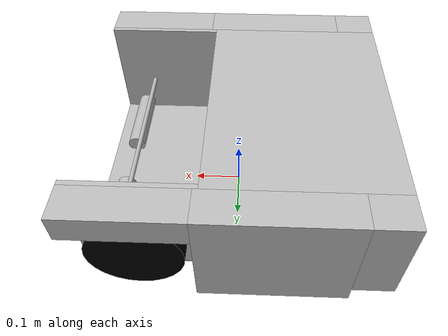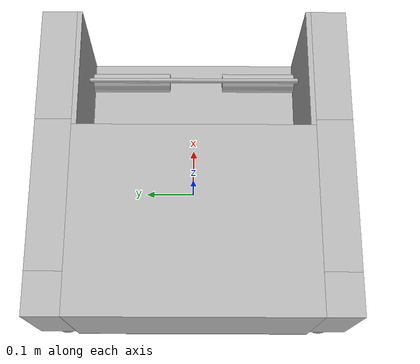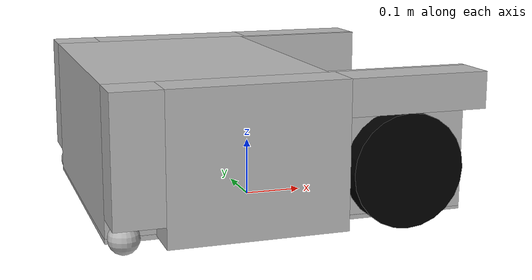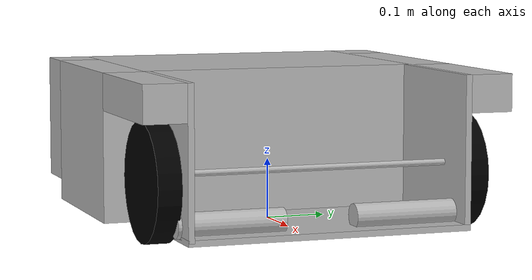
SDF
<?xml version='1.0' ?>
<sdf version='1.4'>
	<model name='ProjectRobot'>
		<link name='chassis'>
			<pose>0 0 0.136 0 0 0</pose>
			<!-- Iron Construction -->
			<collision name='IronLayer'>
				<pose>-0.12 0 0 0 0 0</pose>
				<geometry>
					<box>
						<size>0.36 0.462 0.24</size>
					</box>
				</geometry>
			</collision>
			<visual name='IronLayer'>
				<pose>-0.12 0 0 0 0 0</pose>
				<geometry>
					<box>
						<size>0.36 0.462 0.24</size>
					</box>
				</geometry>
			</visual>

			<!-- Upper Part of wheel -->
			<collision name='Upper_Wheel_Left'>
				<!-- This pose is respect to the center of the box -->
				<pose>0.185 0.2655 0.09 0 0 0</pose>
				<geometry>
					<box>
						<size>0.23 0.069 0.06</size>
					</box>
				</geometry>
			</collision>
			<visual name='Upper_Wheel_Left'>
				<!-- This pose is respect to the center of the box -->
				<pose>0.185 0.2655 0.09 0 0 0</pose>
				<geometry>
					<box>
						<size>0.23 0.069 0.06</size>
					</box>
				</geometry>
			</visual>

			<!-- Upper Part of wheel-->
			<collision name='Upper_Wheel_Right'>
				<!-- This pose is respect to the center of the box -->
				<pose>0.185 -0.2655 0.09 0 0 0</pose>
				<geometry>
					<box>
						<size>0.23 0.069 0.06</size>
					</box>
				</geometry>
			</collision>
			<visual name='Upper_Wheel_Right'>
				<!-- This pose is respect to the center of the box -->
				<pose>0.185 -0.2655 0.09 0 0 0</pose>
				<geometry>
					<box>
						<size>0.23 0.069 0.06</size>
					</box>
				</geometry>
			</visual>

			<!-- Lateral flat piece between wheel and caster -->
			<collision name='Lateral_Flat_Left'>
				<!-- This pose is respect to the center of the box -->
				<pose>-0.075 0.2655 0 0 0 0</pose>
				<geometry>
					<box>
						<size>0.29 0.069 0.24</size>
					</box>
				</geometry>
			</collision>
			<visual name='Lateral_Flat_Left'>
				<!-- This pose is respect to the center of the box -->
				<pose>-0.075 0.2655 0 0 0 0</pose>
				<geometry>
					<box>
						<size>0.29 0.069  0.24</size>
					</box>
				</geometry>
			</visual>

			<!-- Lateral flat piece between wheel and caster -->
			<collision name='Lateral_Flat_Right'>
				<!-- This pose is respect to the center of the box -->
				<pose>-0.075 -0.2655 0 0 0 0</pose>
				<geometry>
					<box>
						<size>0.29 0.069  0.24</size>
					</box>
				</geometry>
			</collision>
			<visual name='Lateral_Flat_Right'>
				<!-- This pose is respect to the center of the box -->
				<pose>-0.075 -0.2655 0 0 0 0</pose>
				<geometry>
					<box>
						<size>0.29 0.069  0.24</size>
					</box>
				</geometry>
			</visual>

			<!-- Upper Part of caster -->
			<collision name='Upper_Caster_Left'>
				<!-- This pose is respect to the center of the box -->
				<pose>-0.26  0.2655 0.0175 0 0 0</pose>
				<geometry>
					<box>
						<size>0.08 0.069 0.205</size>
					</box>
				</geometry>
			</collision>
			<visual name='Upper_Caster_Left'>
				<!-- This pose is respect to the center of the box -->
				<pose>-0.26  0.2655 0.0175 0 0 0</pose>
				<geometry>
					<box>
						<size>0.08 0.069  0.205</size>
					</box>
				</geometry>
			</visual>

			<!-- Upper Part of caster -->
			<collision name='Upper_Caster_Right'>
				<!-- This pose is respect to the center of the box -->
				<pose>-0.26  -0.2655 0.0175 0 0 0</pose>
				<geometry>
					<box>
						<size>0.08 0.069 0.205</size>
					</box>
				</geometry>
			</collision>
			<visual name='Upper_Caster_Right'>
				<!-- This pose is respect to the center of the box -->
				<pose>-0.26  -0.2655 0.0175 0 0 0</pose>
				<geometry>
					<box>
						<size>0.08 0.069  0.205</size>
					</box>
				</geometry>
			</visual>

			<inertial>
				<mass> 7.8612 </mass>
				<inertia>
					<ixx>0.2620398952</ixx>
					<ixy>0</ixy>
					<ixz>0</ixz>
					<iyy>0.2620398952</iyy>
					<iyz>0</iyz>
					<izz>0.4716718113</izz>
				</inertia>
			</inertial>
		</link>

		<link name='LeftMotorPlate'>
			<!-- Left Motor Plate-->
			<collision name='LeftMotorPlate'>
				<pose>0.18 -0.226 0.136 0 0 0</pose>
				<geometry>
					<box>
						<size>0.24 0.01 0.24</size>
					</box>
				</geometry>
			</collision>
			<visual name='LeftMotorPlate'>
				<pose>0.18 -0.226 0.136 0 0 0</pose>
				<geometry>
					<box>
						<size>0.24 0.01 0.24</size>
					</box>
				</geometry>
			</visual>
			<inertial>
				<mass> 0.8041 </mass>
				<inertia>
					<ixx>0</ixx>
					<ixy>0</ixy>
					<ixz>0</ixz>
					<iyy>0</iyy>
					<iyz>0</iyz>
					<izz>0</izz>
				</inertia>
			</inertial>

		</link>
		<joint type="fixed" name="LeftMotorPlateFix">
			<child>LeftMotorPlate</child>
			<parent>chassis</parent>
		</joint>

		<link name='RightMotorPlate'>
			<!-- Right Motor Plate-->
			<collision name='RightMotorPlate'>
				<pose>0.18 0.226 0.136 0 0 0</pose>
				<geometry>
					<box>
						<size>0.24 0.01 0.24</size>
					</box>
				</geometry>
			</collision>
			<visual name='RightMotorPlate'>
				<pose>0.18 0.226 0.136 0 0 0</pose>
				<geometry>
					<box>
						<size>0.24 0.01 0.24</size>
					</box>
				</geometry>
			</visual>
			<inertial>
				<mass> 0.8041 </mass>
				<inertia>
					<ixx>0</ixx>
					<ixy>0</ixy>
					<ixz>0</ixz>
					<iyy>0</iyy>
					<iyz>0</iyz>
					<izz>0</izz>
				</inertia>
			</inertial>
		</link>
		<joint type="fixed" name="RightMotorPlateFix">
			<child>RightMotorPlate</child>
			<parent>chassis</parent>
		</joint>

		<link name='LeftMotor'>
			<collision name='Left Motor'>
				<pose>0.25 -0.15 0.036 0 1.5707 1.5707</pose>
				<geometry>
					<cylinder>
						<radius>0.02</radius>
						<length>0.174</length>
					</cylinder>
				</geometry>
			</collision>
			<visual name='Left Motor'>
				<pose>0.25 -0.15 0.036 0 1.5707 1.5707</pose>
				<geometry>
					<cylinder>
						<radius>0.02</radius>
						<length>0.174</length>
					</cylinder>
				</geometry>
			</visual>
			<inertial>
				<mass> 0.41504 </mass>
				<inertia>
					<ixx>0</ixx>
					<ixy>0</ixy>
					<ixz>0</ixz>
					<iyy>0</iyy>
					<iyz>0</iyz>
					<izz>0</izz>
				</inertia>
			</inertial>
		</link>
		<joint type="fixed" name="LefttMotorFix">
			<child>LeftMotor</child>
			<parent>chassis</parent>
		</joint>

		<link name='RightMotor'>
			<collision name='Right Motor'>
				<pose>0.25 0.14 0.036 0 1.5707 1.5707</pose>
				<geometry>
					<cylinder>
						<radius>0.02</radius>
						<length>0.174</length>
					</cylinder>
				</geometry>
			</collision>
			<visual name='Right Motor'>
				<pose>0.25 0.14 0.036 0 1.5707 1.5707</pose>
				<geometry>
					<cylinder>
						<radius>0.02</radius>
						<length>0.174</length>
					</cylinder>
				</geometry>
			</visual>
			<inertial>
				<mass> 0.41504 </mass>
				<inertia>
					<ixx>0</ixx>
					<ixy>0</ixy>
					<ixz>0</ixz>
					<iyy>0</iyy>
					<iyz>0</iyz>
					<izz>0</izz>
				</inertia>
			</inertial>
		</link>

		<joint type="fixed" name="RightMotorFix">
			<child>RightMotor</child>
			<parent>chassis</parent>
		</joint>

		<link name='BaseLayer'>
			<!-- Base Plane -->
			<collision name='BaseLayer'>
				<pose>0 0 0.016 0 0 0</pose>
				<geometry>
					<box>
						<size>0.60 0.462 0.01</size>
					</box>
				</geometry>
			</collision>
			<visual name='BaseLayer'>
				<pose>0 0 0.016 0 0 0</pose>
				<geometry>
					<box>
						<size>0.60 0.462 0.01</size>
					</box>
				</geometry>
			</visual>
			<inertial>
				<mass> 1.551 </mass>
				<inertia>
					<ixx>0</ixx>
					<ixy>0</ixy>
					<ixz>0</ixz>
					<iyy>0</iyy>
					<iyz>0</iyz>
					<izz>0</izz>
				</inertia>
			</inertial>
		</link>
		<joint type="fixed" name="BaseLayerFix">
			<child>BaseLayer</child>
			<parent>chassis</parent>
		</joint>

		<link name='Rot'>
			<collision name='Rot'>
				<pose>0.22 0 0.111 0 1.5707 1.5707</pose>
				<geometry>
					<cylinder>
						<radius>0.005</radius>
						<length>0.452</length>
					</cylinder>
				</geometry>
			</collision>
			<visual name='Rot'>
				<pose>0.22 0 0.111 0 1.5707 1.5707</pose>
				<geometry>
					<cylinder>
						<radius>0.005</radius>
						<length>0.452</length>
					</cylinder>
				</geometry>
			</visual>
			<inertial>
				<mass> 0.82663 </mass>
				<inertia>
					<ixx>0</ixx>
					<ixy>0</ixy>
					<ixz>0</ixz>
					<iyy>0</iyy>
					<iyz>0</iyz>
					<izz>0</izz>
				</inertia>
			</inertial>
		</link>
		<joint type="fixed" name="RotFix">
			<child>Rot</child>
			<parent>chassis</parent>
		</joint>

		<link name='LeftWheel'>
			<!-- This pose respect to origin -->
			<pose> 0.185 -0.2525 0.095 0 1.5707 1.5707</pose>
			<collision name='collision'>
				<geometry>
					<cylinder>
						<radius>0.095</radius>
						<length>0.038</length>
					</cylinder>
				</geometry>
				<surface>
					<friction>
						<ode>
							<mu>0.6</mu>
							<mu2>0.85</mu2>
						</ode>
					</friction>
				</surface>
			</collision>
			<visual name='visual'>
				<geometry>
					<cylinder>
						<radius>0.095</radius>
						<length>0.038</length>
					</cylinder>
				</geometry>
				<material>
					<ambient>0 0 0 1</ambient>
					<diffuse>0 0 0 1</diffuse>
					<specular>0 0 0 0</specular>
					<emissive>0 0 0 1</emissive>
				</material>
			</visual>
			<inertial>
				<mass> 2.325 </mass>
				<inertia>
					<ixx>0.00552555625</ixx>
					<ixy>0</ixy>
					<ixz>0</ixz>
					<iyy>0.00552555625</iyy>
					<iyz>0</iyz>
					<izz>0.00552555625</izz>
				</inertia>
			</inertial>

		</link>
		<link name='RightWheel'>
			<!-- This pose respect to origin -->
			<pose> 0.185 0.2525 0.095 0 1.5707 1.5707</pose>
			<collision name='collision'>
				<geometry>
					<cylinder>
						<radius>0.095</radius>
						<length>0.038</length>
					</cylinder>
				</geometry>
				<surface>
					<friction>
						<ode>
							<mu>0.6</mu>
							<mu2>0.85</mu2>
						</ode>
					</friction>
				</surface>
			</collision>
			<visual name='visual'>
				<geometry>
					<cylinder>
						<radius>0.095</radius>
						<length>0.038</length>
					</cylinder>
				</geometry>
				<material>
					<ambient>0 0 0 1</ambient>
					<diffuse>0 0 0 1</diffuse>
					<specular>0 0 0 0</specular>
					<emissive>0 0 0 1</emissive>
				</material>
			</visual>
			<inertial>
				<mass> 2.325 </mass>
				<inertia>
					<ixx>0.00552555625</ixx>
					<ixy>0</ixy>
					<ixz>0</ixz>
					<iyy>0.00552555625</iyy>
					<iyz>0</iyz>
					<izz>0.00552555625</izz>
				</inertia>
			</inertial>
		</link>

		<link name='LeftCaster'>
			<pose> -0.275 -0.2525 0.025 0 0 0</pose>
			<collision name='collision'>
				<geometry>
					<sphere>
						<radius>0.025</radius>
					</sphere>
				</geometry>
				<surface>
					<friction>
						<ode>
							<mu>0.6</mu>
							<mu2>0.85</mu2>
						</ode>
					</friction>
				</surface>
			</collision>
			<visual name='visual'>
				<geometry>
					<sphere>
						<radius>0.025</radius>
					</sphere>
				</geometry>
			</visual>
			<inertial>
				<mass> 0.101553 </mass>
				<inertia>
					<ixx>0.00002538825</ixx>
					<ixy>0</ixy>
					<ixz>0</ixz>
					<iyy>0.00002538825</iyy>
					<iyz>0</iyz>
					<izz>0.00002538825</izz>
				</inertia>
			</inertial>
		</link>
		<link name='RightCaster'>
			<pose> -0.275 0.2525 0.025 0 0 0</pose>
			<collision name='collision'>
				<geometry>
					<sphere>
						<radius>0.025</radius>
					</sphere>
				</geometry>
				<surface>
					<friction>
						<ode>
							<mu>0.6</mu>
							<mu2>0.85</mu2>
						</ode>
					</friction>
				</surface>
			</collision>
			<visual name='visual'>
				<geometry>
					<sphere>
						<radius>0.025</radius>
					</sphere>
				</geometry>
			</visual>
			<inertial>
				<mass> 0.101553 </mass>
				<inertia>
					<ixx>0.00002538825</ixx>
					<ixy>0</ixy>
					<ixz>0</ixz>
					<iyy>0.00002538825</iyy>
					<iyz>0</iyz>
					<izz>0.00002538825</izz>
				</inertia>
			</inertial>
		</link>

		<joint type="ball" name="left_caster_hinge">
			<child>LeftCaster</child>
			<parent>chassis</parent>
		</joint>
		<joint type="ball" name="right_caster_hinge">
			<child>RightCaster</child>
			<parent>chassis</parent>
		</joint>

		<joint type="revolute" name="left_wheel_hinge">
			<child>LeftWheel</child>
			<parent>LeftMotorPlate</parent>
			<axis>
				<xyz>0 1 0</xyz>
			</axis>
		</joint>
		<joint type="revolute" name="right_wheel_hinge">
			<child>RightWheel</child>
			<parent>RightMotorPlate</parent>
			<axis>
				<xyz>0 1 0</xyz>
			</axis>
		</joint>
		<plugin name="differential_drive_controller" filename="libgazebo_ros_diff_drive.so">
			<alwaysOn>true</alwaysOn>
			<updateRate>20</updateRate>
			<leftJoint>right_wheel_hinge</leftJoint>
			<rightJoint>left_wheel_hinge</rightJoint>
			<wheelSeparation>0.462</wheelSeparation>
			<wheelDiameter>0.19</wheelDiameter>
			<torque>20</torque>
			<commandTopic>cmd_vel</commandTopic>
			<odometryTopic>odom</odometryTopic>
			<odometryFrame>odom</odometryFrame>
			<robotBaseFrame>base_footprint</robotBaseFrame>
		</plugin>
	</model>
</sdf>
